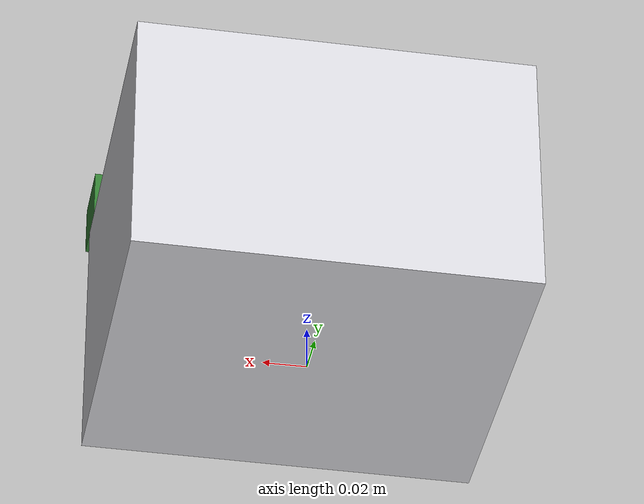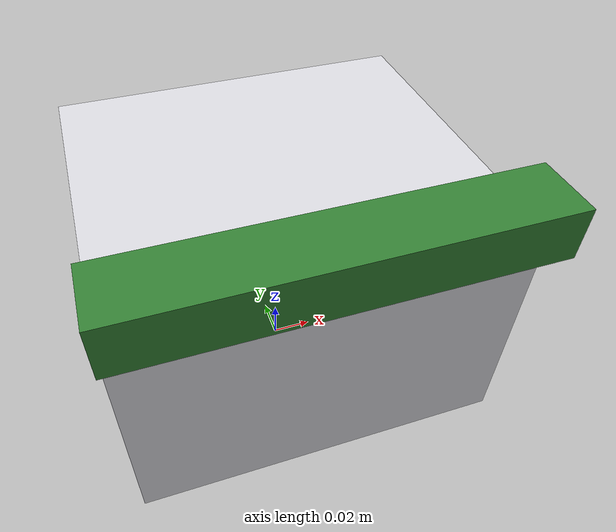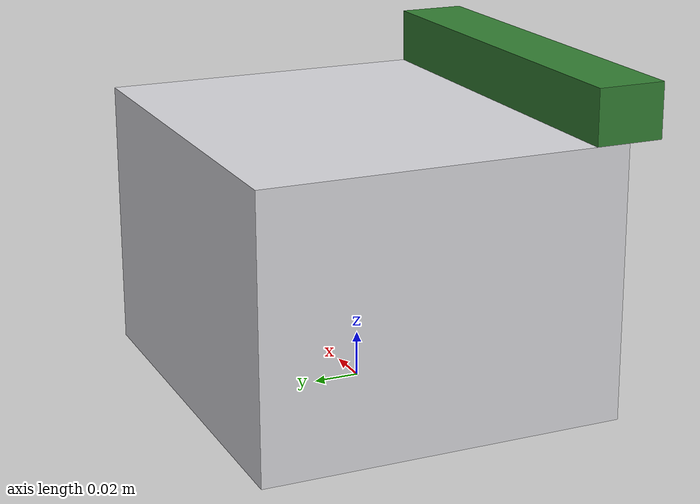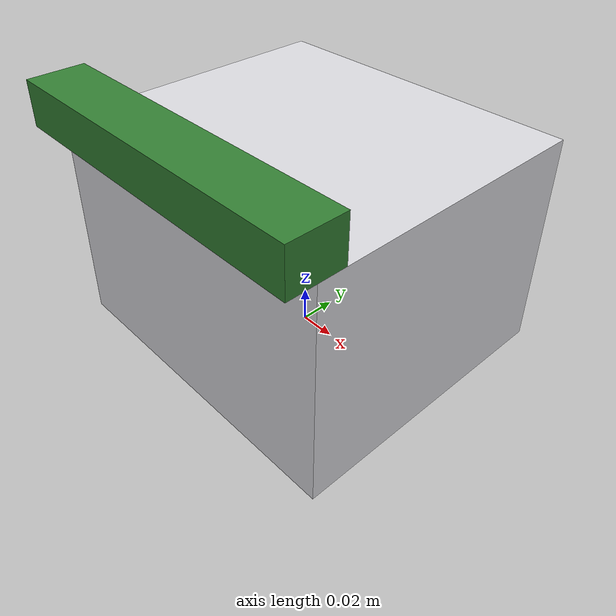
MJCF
<?xml version="1.0" encoding="utf-8"?>
<mujoco model="real_lab_tu_berlin_flow_cytometer">
  <compiler angle="radian" autolimits="true"/>
  <default>
    <default class="body"><geom contype="1" conaffinity="1"/></default>
  </default>
  <worldbody>
    <body name="base">
      <geom type="box" size="0.09 0.08 0.06" pos="0 0 0.06" rgba="0.85 0.85 0.87 1" class="body"/>
      <body name="lid" pos="0 -0.08 0.12">
        <joint name="lid_joint" type="hinge" axis="0 1 0" range="0 1.5" damping="0.6" frictionloss="0.25"/>
  <geom type="box" size="0.09 0.015 0.012" pos="0 0 0.012" rgba="0.2 0.5 0.2 1" class="body"/>
      </body>
    </body>
  </worldbody>
</mujoco>
